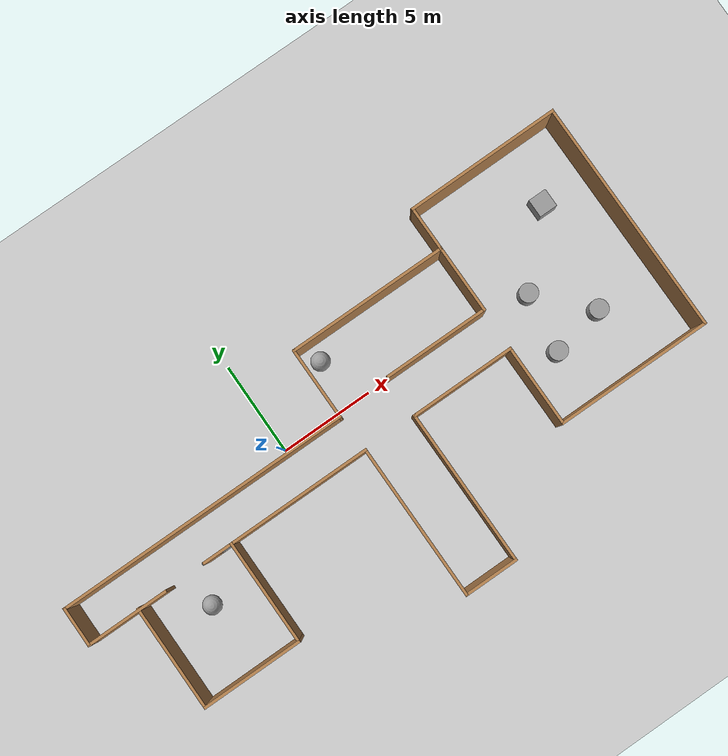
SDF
<sdf version="1.7">
 <world name="default">
  <model name="ground_plane">
   <static>1</static>
   <link name="link">
    <collision name="collision">
     <geometry><plane><normal>0 0 1</normal><size>100 100</size></plane></geometry>
     <surface><friction><ode><mu>100</mu><mu2>50</mu2></ode></friction></surface>
    </collision>
    <visual name="visual">
     <cast_shadows>0</cast_shadows>
     <geometry><plane><normal>0 0 1</normal><size>100 100</size></plane></geometry>
     <material>
      <script><uri>file://media/materials/scripts/gazebo.material</uri><name>Gazebo/Grey</name></script>
     </material>
    </visual>
   </link>
  </model>
  <gravity>0 0 -9.8</gravity>
  <magnetic_field>6e-06 2.3e-05 -4.2e-05</magnetic_field>
  <atmosphere type="adiabatic"/>
  <physics type="ode">
   <max_step_size>0.001</max_step_size>
   <real_time_factor>1</real_time_factor>
   <real_time_update_rate>1000</real_time_update_rate>
  </physics>
  <scene><ambient>0.4 0.4 0.4 1</ambient><background>0.7 0.7 0.7 1</background><shadows>1</shadows></scene>
  <spherical_coordinates>
   <surface_model>EARTH_WGS84</surface_model>
   <latitude_deg>0</latitude_deg>
   <longitude_deg>0</longitude_deg>
   <elevation>0</elevation>
   <heading_deg>0</heading_deg>
  </spherical_coordinates>
  <model name="test">
   <pose>3.67694 -2.37441 0 0 -0 0</pose>
   <link name="Wall_10">
    <collision name="Wall_10_Collision">
     <geometry><box><size>5.5 0.15 2.5</size></box></geometry>
     <pose>0 0 1.25 0 -0 0</pose>
    </collision>
    <visual name="Wall_10_Visual">
     <pose>0 0 1.25 0 -0 0</pose>
     <geometry><box><size>5.5 0.15 2.5</size></box></geometry>
     <material>
      <script><uri>file://media/materials/scripts/gazebo.material</uri><name>Gazebo/Wood</name></script>
      <ambient>1 1 1 1</ambient>
     </material>
     <meta><layer>0</layer></meta>
    </visual>
    <pose>-10.8519 -5.5502 0 0 -0 0</pose>
   </link>
   <link name="Wall_11">
    <collision name="Wall_11_Collision">
     <geometry><box><size>5.75 0.15 2.5</size></box></geometry>
     <pose>0 0 1.25 0 -0 0</pose>
    </collision>
    <visual name="Wall_11_Visual">
     <pose>0 0 1.25 0 -0 0</pose>
     <geometry><box><size>5.75 0.15 2.5</size></box></geometry>
     <material>
      <script><uri>file://media/materials/scripts/gazebo.material</uri><name>Gazebo/Wood</name></script>
      <ambient>1 1 1 1</ambient>
     </material>
     <meta><layer>0</layer></meta>
    </visual>
    <pose>-8.17693 -2.7502 0 0 -0 1.5708</pose>
   </link>
   <link name="Wall_12">
    <collision name="Wall_12_Collision">
     <geometry><box><size>1.75 0.15 2.5</size></box></geometry>
     <pose>0 0 1.25 0 -0 0</pose>
    </collision>
    <visual name="Wall_12_Visual">
     <pose>0 0 1.25 0 -0 0</pose>
     <geometry><box><size>1.75 0.15 2.5</size></box></geometry>
     <material>
      <script><uri>file://media/materials/scripts/gazebo.material</uri><name>Gazebo/Grey</name></script>
      <ambient>1 1 1 1</ambient>
     </material>
     <meta><layer>0</layer></meta>
    </visual>
    <pose>-8.97693 0.049799 0 0 -0 3.14159</pose>
   </link>
   <link name="Wall_13">
    <collision name="Wall_13_Collision">
     <geometry><box><size>9.5 0.15 2.5</size></box></geometry>
     <pose>0 0 1.25 0 -0 0</pose>
    </collision>
    <visual name="Wall_13_Visual">
     <pose>0 0 1.25 0 -0 0</pose>
     <geometry><box><size>9.5 0.15 2.5</size></box></geometry>
     <material>
      <script><uri>file://media/materials/scripts/gazebo.material</uri><name>Gazebo/Wood</name></script>
      <ambient>1 1 1 1</ambient>
     </material>
     <meta><layer>0</layer></meta>
    </visual>
    <pose>-5.10193 0.049799 0 0 -0 0</pose>
   </link>
   <link name="Wall_14">
    <collision name="Wall_14_Collision">
     <geometry><box><size>8.5 0.15 2.5</size></box></geometry>
     <pose>0 0 1.25 0 -0 0</pose>
    </collision>
    <visual name="Wall_14_Visual">
     <pose>0 0 1.25 0 -0 0</pose>
     <geometry><box><size>8.5 0.15 2.5</size></box></geometry>
     <material>
      <script><uri>file://media/materials/scripts/gazebo.material</uri><name>Gazebo/Wood</name></script>
      <ambient>1 1 1 1</ambient>
     </material>
     <meta><layer>0</layer></meta>
    </visual>
    <pose>-0.426931 -4.1252 0 0 -0 -1.5708</pose>
   </link>
   <link name="Wall_15">
    <collision name="Wall_15_Collision">
     <geometry><box><size>3 0.15 2.5</size></box></geometry>
     <pose>0 0 1.25 0 -0 0</pose>
    </collision>
    <visual name="Wall_15_Visual">
     <pose>0 0 1.25 0 -0 0</pose>
     <geometry><box><size>3 0.15 2.5</size></box></geometry>
     <material>
      <script><uri>file://media/materials/scripts/gazebo.material</uri><name>Gazebo/Wood</name></script>
      <ambient>1 1 1 1</ambient>
     </material>
     <meta><layer>0</layer></meta>
    </visual>
    <pose>0.998069 -8.3002 0 0 -0 0</pose>
   </link>
   <link name="Wall_16">
    <collision name="Wall_16_Collision">
     <geometry><box><size>8.5 0.15 2.5</size></box></geometry>
     <pose>0 0 1.25 0 -0 0</pose>
    </collision>
    <visual name="Wall_16_Visual">
     <pose>0 0 1.25 0 -0 0</pose>
     <geometry><box><size>8.5 0.15 2.5</size></box></geometry>
     <material>
      <script><uri>file://media/materials/scripts/gazebo.material</uri><name>Gazebo/Wood</name></script>
      <ambient>1 1 1 1</ambient>
     </material>
     <meta><layer>0</layer></meta>
    </visual>
    <pose>2.42307 -4.1252 0 0 -0 1.5708</pose>
   </link>
   <link name="Wall_17">
    <collision name="Wall_17_Collision">
     <geometry><box><size>5.75 0.15 2.5</size></box></geometry>
     <pose>0 0 1.25 0 -0 0</pose>
    </collision>
    <visual name="Wall_17_Visual">
     <pose>0 0 1.25 0 -0 0</pose>
     <geometry><box><size>5.75 0.15 2.5</size></box></geometry>
     <material>
      <script><uri>file://media/materials/scripts/gazebo.material</uri><name>Gazebo/Wood</name></script>
      <ambient>1 1 1 1</ambient>
     </material>
     <meta><layer>0</layer></meta>
    </visual>
    <pose>5.22307 0.049799 0 0 -0 0</pose>
   </link>
   <link name="Wall_19">
    <collision name="Wall_19_Collision">
     <geometry><box><size>16 0.15 2.5</size></box></geometry>
     <pose>0 0 1.25 0 -0 0</pose>
    </collision>
    <visual name="Wall_19_Visual">
     <pose>0 0 1.25 0 -0 0</pose>
     <geometry><box><size>16 0.15 2.5</size></box></geometry>
     <material>
      <script><uri>file://media/materials/scripts/gazebo.material</uri><name>Gazebo/Wood</name></script>
      <ambient>1 1 1 1</ambient>
     </material>
     <meta><layer>0</layer></meta>
    </visual>
    <pose>-8.4394 2.05526 0 0 -0 0</pose>
   </link>
   <link name="Wall_21">
    <collision name="Wall_21_Collision">
     <geometry><box><size>2.20868 0.15 2.5</size></box></geometry>
     <pose>0 0 1.25 0 -0 0</pose>
    </collision>
    <visual name="Wall_21_Visual">
     <pose>0 0 1.25 0 -0 0</pose>
     <geometry><box><size>2.20868 0.15 2.5</size></box></geometry>
     <material>
      <script><uri>file://media/materials/scripts/gazebo.material</uri><name>Gazebo/Wood</name></script>
      <ambient>1 1 1 1</ambient>
     </material>
     <meta><layer>0</layer></meta>
    </visual>
    <pose>-16.3688 1.02593 0 0 -0 1.56654</pose>
   </link>
   <link name="Wall_23">
    <collision name="Wall_23_Collision">
     <geometry><box><size>4 0.15 2.5</size></box></geometry>
     <pose>0 0 1.25 0 -0 0</pose>
    </collision>
    <visual name="Wall_23_Visual">
     <pose>0 0 1.25 0 -0 0</pose>
     <geometry><box><size>4 0.15 2.5</size></box></geometry>
     <material>
      <script><uri>file://media/materials/scripts/gazebo.material</uri><name>Gazebo/Wood</name></script>
      <ambient>1 1 1 1</ambient>
     </material>
     <meta><layer>0</layer></meta>
    </visual>
    <pose>-0.514398 3.98026 0 0 -0 1.5708</pose>
   </link>
   <link name="Wall_24">
    <collision name="Wall_24_Collision">
     <geometry><box><size>8.75 0.15 2.5</size></box></geometry>
     <pose>0 0 1.25 0 -0 0</pose>
    </collision>
    <visual name="Wall_24_Visual">
     <pose>0 0 1.25 0 -0 0</pose>
     <geometry><box><size>8.75 0.15 2.5</size></box></geometry>
     <material>
      <script><uri>file://media/materials/scripts/gazebo.material</uri><name>Gazebo/Wood</name></script>
      <ambient>1 1 1 1</ambient>
     </material>
     <meta><layer>0</layer></meta>
    </visual>
    <pose>3.7856 5.90526 0 0 -0 0</pose>
   </link>
   <link name="Wall_25">
    <collision name="Wall_25_Collision">
     <geometry><box><size>3.75 0.15 2.5</size></box></geometry>
     <pose>0 0 1.25 0 -0 0</pose>
    </collision>
    <visual name="Wall_25_Visual">
     <pose>0 0 1.25 0 -0 0</pose>
     <geometry><box><size>3.75 0.15 2.5</size></box></geometry>
     <material>
      <script><uri>file://media/materials/scripts/gazebo.material</uri><name>Gazebo/Wood</name></script>
      <ambient>1 1 1 1</ambient>
     </material>
     <meta><layer>0</layer></meta>
    </visual>
    <pose>8.0856 4.10526 0 0 -0 -1.5708</pose>
   </link>
   <link name="Wall_26">
    <collision name="Wall_26_Collision">
     <geometry><box><size>5.75 0.15 2.5</size></box></geometry>
     <pose>0 0 1.25 0 -0 0</pose>
    </collision>
    <visual name="Wall_26_Visual">
     <pose>0 0 1.25 0 -0 0</pose>
     <geometry><box><size>5.75 0.15 2.5</size></box></geometry>
     <material>
      <script><uri>file://media/materials/scripts/gazebo.material</uri><name>Gazebo/Wood</name></script>
      <ambient>1 1 1 1</ambient>
     </material>
     <meta><layer>0</layer></meta>
    </visual>
    <pose>5.2856 2.30526 0 0 -0 3.14159</pose>
   </link>
   <link name="Wall_28">
    <collision name="Wall_28_Collision">
     <geometry><box><size>4.5 0.15 2.5</size></box></geometry>
     <pose>0 0 1.25 0 -0 0</pose>
    </collision>
    <visual name="Wall_28_Visual">
     <pose>0 0 1.25 0 -0 0</pose>
     <geometry><box><size>4.5 0.15 2.5</size></box></geometry>
     <material>
      <script><uri>file://media/materials/scripts/gazebo.material</uri><name>Gazebo/Wood</name></script>
      <ambient>1 1 1 1</ambient>
     </material>
     <meta><layer>0</layer></meta>
    </visual>
    <pose>8.02307 -2.1252 0 0 -0 -1.5708</pose>
   </link>
   <link name="Wall_29">
    <collision name="Wall_29_Collision">
     <geometry><box><size>8.5 0.15 2.5</size></box></geometry>
     <pose>0 0 1.25 0 -0 0</pose>
    </collision>
    <visual name="Wall_29_Visual">
     <pose>0 0 1.25 0 -0 0</pose>
     <geometry><box><size>8.5 0.15 2.5</size></box></geometry>
     <material>
      <script><uri>file://media/materials/scripts/gazebo.material</uri><name>Gazebo/Wood</name></script>
      <ambient>1 1 1 1</ambient>
     </material>
     <meta><layer>0</layer></meta>
    </visual>
    <pose>12.1981 -4.3002 0 0 -0 0</pose>
   </link>
   <link name="Wall_30">
    <collision name="Wall_30_Collision">
     <geometry><box><size>12.75 0.15 2.5</size></box></geometry>
     <pose>0 0 1.25 0 -0 0</pose>
    </collision>
    <visual name="Wall_30_Visual">
     <pose>0 0 1.25 0 -0 0</pose>
     <geometry><box><size>12.75 0.15 2.5</size></box></geometry>
     <material>
      <script><uri>file://media/materials/scripts/gazebo.material</uri><name>Gazebo/Wood</name></script>
      <ambient>1 1 1 1</ambient>
     </material>
     <meta><layer>0</layer></meta>
    </visual>
    <pose>16.3731 1.9998 0 0 -0 1.5708</pose>
   </link>
   <link name="Wall_32">
    <collision name="Wall_32_Collision">
     <geometry><box><size>2.5 0.15 2.5</size></box></geometry>
     <pose>0 0 1.25 0 -0 0</pose>
    </collision>
    <visual name="Wall_32_Visual">
     <pose>0 0 1.25 0 -0 0</pose>
     <geometry><box><size>2.5 0.15 2.5</size></box></geometry>
     <material>
      <script><uri>file://media/materials/scripts/gazebo.material</uri><name>Gazebo/Wood</name></script>
      <ambient>1 1 1 1</ambient>
     </material>
     <meta><layer>0</layer></meta>
    </visual>
    <pose>8.0856 7.08026 0 0 -0 -1.5708</pose>
   </link>
   <link name="Wall_34">
    <collision name="Wall_34_Collision">
     <geometry><box><size>8.43759 0.15 2.5</size></box></geometry>
     <pose>0 0 1.25 0 -0 0</pose>
    </collision>
    <visual name="Wall_34_Visual">
     <pose>0 0 1.25 0 -0 0</pose>
     <geometry><box><size>8.43759 0.15 2.5</size></box></geometry>
     <material>
      <script><uri>file://media/materials/scripts/gazebo.material</uri><name>Gazebo/Wood</name></script>
      <ambient>1 1 1 1</ambient>
     </material>
     <meta><layer>0</layer></meta>
    </visual>
    <pose>12.2293 8.27753 0 0 -0 0.005374</pose>
   </link>
   <link name="Wall_7">
    <collision name="Wall_7_Collision">
     <geometry><box><size>4.5 0.15 2.5</size></box></geometry>
     <pose>0 0 1.25 0 -0 0</pose>
    </collision>
    <visual name="Wall_7_Visual">
     <pose>0 0 1.25 0 -0 0</pose>
     <geometry><box><size>4.5 0.15 2.5</size></box></geometry>
     <material>
      <script><uri>file://media/materials/scripts/gazebo.material</uri><name>Gazebo/Wood</name></script>
      <ambient>1 1 1 1</ambient>
     </material>
     <meta><layer>0</layer></meta>
    </visual>
    <pose>-14.1982 -0.003401 0 0 -0 0</pose>
   </link>
   <link name="Wall_9">
    <collision name="Wall_9_Collision">
     <geometry><box><size>5.75 0.15 2.5</size></box></geometry>
     <pose>0 0 1.25 0 -0 0</pose>
    </collision>
    <visual name="Wall_9_Visual">
     <pose>0 0 1.25 0 -0 0</pose>
     <geometry><box><size>5.75 0.15 2.5</size></box></geometry>
     <material>
      <script><uri>file://media/materials/scripts/gazebo.material</uri><name>Gazebo/Wood</name></script>
      <ambient>1 1 1 1</ambient>
     </material>
     <meta><layer>0</layer></meta>
    </visual>
    <pose>-13.5269 -2.7502 0 0 -0 -1.5708</pose>
   </link>
   <static>1</static>
  </model>
  <model name="test_0">
   <link name="link_0">
    <inertial>
     <mass>1</mass>
     <inertia><ixx>0.145833</ixx><ixy>0</ixy><ixz>0</ixz><iyy>0.145833</iyy><iyz>0</iyz><izz>0.125</izz></inertia>
    </inertial>
    <pose>4.44532 0.504832 0 0 -0 0</pose>
    <visual name="visual">
     <geometry><cylinder><radius>0.5</radius><length>1</length></cylinder></geometry>
     <material>
      <lighting>1</lighting>
      <script><uri>file://media/materials/scripts/gazebo.material</uri><name>Gazebo/Grey</name></script>
      <shader type="pixel"/>
     </material>
    </visual>
    <collision name="collision">
     <geometry><cylinder><radius>0.5</radius><length>1</length></cylinder></geometry>
     <surface>
      <friction>
       <ode><mu>1</mu><mu2>1</mu2><fdir1>0 0 0</fdir1><slip1>0</slip1><slip2>0</slip2></ode>
       <torsional>
        <coefficient>1</coefficient>
        <patch_radius>0</patch_radius>
        <surface_radius>0</surface_radius>
        <use_patch_radius>1</use_patch_radius>
        <ode><slip>0</slip></ode>
       </torsional>
      </friction>
      <bounce><restitution_coefficient>0</restitution_coefficient><threshold>1e+06</threshold></bounce>
      <contact>
       <collide_without_contact>0</collide_without_contact>
       <collide_without_contact_bitmask>1</collide_without_contact_bitmask>
       <collide_bitmask>1</collide_bitmask>
       <ode>
        <soft_cfm>0</soft_cfm>
        <soft_erp>0.2</soft_erp>
        <kp>1e+13</kp>
        <kd>1</kd>
        <max_vel>0.01</max_vel>
        <min_depth>0</min_depth>
       </ode>
       <bullet>
        <split_impulse>1</split_impulse>
        <split_impulse_penetration_threshold>-0.01</split_impulse_penetration_threshold>
        <soft_cfm>0</soft_cfm>
        <soft_erp>0.2</soft_erp>
        <kp>1e+13</kp>
        <kd>1</kd>
       </bullet>
      </contact>
     </surface>
    </collision>
   </link>
   <link name="link_1">
    <inertial>
     <mass>1</mass>
     <inertia><ixx>0.145833</ixx><ixy>0</ixy><ixz>0</ixz><iyy>0.145833</iyy><iyz>0</iyz><izz>0.125</izz></inertia>
    </inertial>
    <pose>6.82495 -2.12202 0 0 -0 0</pose>
    <visual name="visual">
     <geometry><cylinder><radius>0.5</radius><length>1</length></cylinder></geometry>
     <material>
      <lighting>1</lighting>
      <script><uri>file://media/materials/scripts/gazebo.material</uri><name>Gazebo/Grey</name></script>
      <shader type="pixel"/>
     </material>
    </visual>
    <collision name="collision">
     <geometry><cylinder><radius>0.5</radius><length>1</length></cylinder></geometry>
     <surface>
      <friction>
       <ode><mu>1</mu><mu2>1</mu2><fdir1>0 0 0</fdir1><slip1>0</slip1><slip2>0</slip2></ode>
       <torsional>
        <coefficient>1</coefficient>
        <patch_radius>0</patch_radius>
        <surface_radius>0</surface_radius>
        <use_patch_radius>1</use_patch_radius>
        <ode><slip>0</slip></ode>
       </torsional>
      </friction>
      <bounce><restitution_coefficient>0</restitution_coefficient><threshold>1e+06</threshold></bounce>
      <contact>
       <collide_without_contact>0</collide_without_contact>
       <collide_without_contact_bitmask>1</collide_without_contact_bitmask>
       <collide_bitmask>1</collide_bitmask>
       <ode>
        <soft_cfm>0</soft_cfm>
        <soft_erp>0.2</soft_erp>
        <kp>1e+13</kp>
        <kd>1</kd>
        <max_vel>0.01</max_vel>
        <min_depth>0</min_depth>
       </ode>
       <bullet>
        <split_impulse>1</split_impulse>
        <split_impulse_penetration_threshold>-0.01</split_impulse_penetration_threshold>
        <soft_cfm>0</soft_cfm>
        <soft_erp>0.2</soft_erp>
        <kp>1e+13</kp>
        <kd>1</kd>
       </bullet>
      </contact>
     </surface>
    </collision>
   </link>
   <link name="link_2">
    <inertial>
     <mass>1</mass>
     <inertia><ixx>0.145833</ixx><ixy>0</ixy><ixz>0</ixz><iyy>0.145833</iyy><iyz>0</iyz><izz>0.125</izz></inertia>
    </inertial>
    <pose>3.99212 -2.65955 0 0 -0 0</pose>
    <visual name="visual">
     <geometry><cylinder><radius>0.5</radius><length>1</length></cylinder></geometry>
     <material>
      <lighting>1</lighting>
      <script><uri>file://media/materials/scripts/gazebo.material</uri><name>Gazebo/Grey</name></script>
      <shader type="pixel"/>
     </material>
    </visual>
    <collision name="collision">
     <geometry><cylinder><radius>0.5</radius><length>1</length></cylinder></geometry>
     <surface>
      <friction>
       <ode><mu>1</mu><mu2>1</mu2><fdir1>0 0 0</fdir1><slip1>0</slip1><slip2>0</slip2></ode>
       <torsional>
        <coefficient>1</coefficient>
        <patch_radius>0</patch_radius>
        <surface_radius>0</surface_radius>
        <use_patch_radius>1</use_patch_radius>
        <ode><slip>0</slip></ode>
       </torsional>
      </friction>
      <bounce><restitution_coefficient>0</restitution_coefficient><threshold>1e+06</threshold></bounce>
      <contact>
       <collide_without_contact>0</collide_without_contact>
       <collide_without_contact_bitmask>1</collide_without_contact_bitmask>
       <collide_bitmask>1</collide_bitmask>
       <ode>
        <soft_cfm>0</soft_cfm>
        <soft_erp>0.2</soft_erp>
        <kp>1e+13</kp>
        <kd>1</kd>
        <max_vel>0.01</max_vel>
        <min_depth>0</min_depth>
       </ode>
       <bullet>
        <split_impulse>1</split_impulse>
        <split_impulse_penetration_threshold>-0.01</split_impulse_penetration_threshold>
        <soft_cfm>0</soft_cfm>
        <soft_erp>0.2</soft_erp>
        <kp>1e+13</kp>
        <kd>1</kd>
       </bullet>
      </contact>
     </surface>
    </collision>
   </link>
   <link name="link_4">
    <inertial>
     <mass>1</mass>
     <inertia>
      <ixx>0.166667</ixx>
      <ixy>0</ixy>
      <ixz>0</ixz>
      <iyy>0.166667</iyy>
      <iyz>0</iyz>
      <izz>0.166667</izz>
     </inertia>
    </inertial>
    <pose>7.59812 3.7443 0 0 -0 0</pose>
    <visual name="visual">
     <geometry><box><size>1 1 1</size></box></geometry>
     <material>
      <lighting>1</lighting>
      <script><uri>file://media/materials/scripts/gazebo.material</uri><name>Gazebo/Grey</name></script>
      <shader type="pixel"/>
     </material>
    </visual>
    <collision name="collision">
     <geometry><box><size>1 1 1</size></box></geometry>
     <surface>
      <friction>
       <ode><mu>1</mu><mu2>1</mu2><fdir1>0 0 0</fdir1><slip1>0</slip1><slip2>0</slip2></ode>
       <torsional>
        <coefficient>1</coefficient>
        <patch_radius>0</patch_radius>
        <surface_radius>0</surface_radius>
        <use_patch_radius>1</use_patch_radius>
        <ode><slip>0</slip></ode>
       </torsional>
      </friction>
      <bounce><restitution_coefficient>0</restitution_coefficient><threshold>1e+06</threshold></bounce>
      <contact>
       <collide_without_contact>0</collide_without_contact>
       <collide_without_contact_bitmask>1</collide_without_contact_bitmask>
       <collide_bitmask>1</collide_bitmask>
       <ode>
        <soft_cfm>0</soft_cfm>
        <soft_erp>0.2</soft_erp>
        <kp>1e+13</kp>
        <kd>1</kd>
        <max_vel>0.01</max_vel>
        <min_depth>0</min_depth>
       </ode>
       <bullet>
        <split_impulse>1</split_impulse>
        <split_impulse_penetration_threshold>-0.01</split_impulse_penetration_threshold>
        <soft_cfm>0</soft_cfm>
        <soft_erp>0.2</soft_erp>
        <kp>1e+13</kp>
        <kd>1</kd>
       </bullet>
      </contact>
     </surface>
    </collision>
   </link>
   <link name="link_5">
    <inertial>
     <mass>1</mass>
     <inertia><ixx>0.1</ixx><ixy>0</ixy><ixz>0</ixz><iyy>0.1</iyy><iyz>0</iyz><izz>0.1</izz></inertia>
    </inertial>
    <pose>-5.86615 3.64872 0 0 -0 0</pose>
    <visual name="visual">
     <geometry><sphere><radius>0.5</radius></sphere></geometry>
     <material>
      <lighting>1</lighting>
      <script><uri>file://media/materials/scripts/gazebo.material</uri><name>Gazebo/Grey</name></script>
      <shader type="pixel"/>
     </material>
    </visual>
    <collision name="collision">
     <geometry><sphere><radius>0.5</radius></sphere></geometry>
     <surface>
      <friction>
       <ode><mu>1</mu><mu2>1</mu2><fdir1>0 0 0</fdir1><slip1>0</slip1><slip2>0</slip2></ode>
       <torsional>
        <coefficient>1</coefficient>
        <patch_radius>0</patch_radius>
        <surface_radius>0</surface_radius>
        <use_patch_radius>1</use_patch_radius>
        <ode><slip>0</slip></ode>
       </torsional>
      </friction>
      <bounce><restitution_coefficient>0</restitution_coefficient><threshold>1e+06</threshold></bounce>
      <contact>
       <collide_without_contact>0</collide_without_contact>
       <collide_without_contact_bitmask>1</collide_without_contact_bitmask>
       <collide_bitmask>1</collide_bitmask>
       <ode>
        <soft_cfm>0</soft_cfm>
        <soft_erp>0.2</soft_erp>
        <kp>1e+13</kp>
        <kd>1</kd>
        <max_vel>0.01</max_vel>
        <min_depth>0</min_depth>
       </ode>
       <bullet>
        <split_impulse>1</split_impulse>
        <split_impulse_penetration_threshold>-0.01</split_impulse_penetration_threshold>
        <soft_cfm>0</soft_cfm>
        <soft_erp>0.2</soft_erp>
        <kp>1e+13</kp>
        <kd>1</kd>
       </bullet>
      </contact>
     </surface>
    </collision>
   </link>
   <link name="link_6">
    <inertial>
     <mass>1</mass>
     <inertia><ixx>0.1</ixx><ixy>0</ixy><ixz>0</ixz><iyy>0.1</iyy><iyz>0</iyz><izz>0.1</izz></inertia>
    </inertial>
    <pose>-16.9945 -3.11625 0 0 -0 0</pose>
    <visual name="visual">
     <geometry><sphere><radius>0.5</radius></sphere></geometry>
     <material>
      <lighting>1</lighting>
      <script><uri>file://media/materials/scripts/gazebo.material</uri><name>Gazebo/Grey</name></script>
      <shader type="pixel"/>
     </material>
    </visual>
    <collision name="collision">
     <geometry><sphere><radius>0.5</radius></sphere></geometry>
     <surface>
      <friction>
       <ode><mu>1</mu><mu2>1</mu2><fdir1>0 0 0</fdir1><slip1>0</slip1><slip2>0</slip2></ode>
       <torsional>
        <coefficient>1</coefficient>
        <patch_radius>0</patch_radius>
        <surface_radius>0</surface_radius>
        <use_patch_radius>1</use_patch_radius>
        <ode><slip>0</slip></ode>
       </torsional>
      </friction>
      <bounce><restitution_coefficient>0</restitution_coefficient><threshold>1e+06</threshold></bounce>
      <contact>
       <collide_without_contact>0</collide_without_contact>
       <collide_without_contact_bitmask>1</collide_without_contact_bitmask>
       <collide_bitmask>1</collide_bitmask>
       <ode>
        <soft_cfm>0</soft_cfm>
        <soft_erp>0.2</soft_erp>
        <kp>1e+13</kp>
        <kd>1</kd>
        <max_vel>0.01</max_vel>
        <min_depth>0</min_depth>
       </ode>
       <bullet>
        <split_impulse>1</split_impulse>
        <split_impulse_penetration_threshold>-0.01</split_impulse_penetration_threshold>
        <soft_cfm>0</soft_cfm>
        <soft_erp>0.2</soft_erp>
        <kp>1e+13</kp>
        <kd>1</kd>
       </bullet>
      </contact>
     </surface>
    </collision>
   </link>
   <static>0</static>
   <pose>9.80393 -1.05329 0.5 0 -0 0</pose>
  </model>
  <light name="user_directional_light_0" type="directional">
   <pose>4.8024 -1.04106 1 0 -0 0</pose>
   <diffuse>0.5 0.5 0.5 1</diffuse>
   <specular>0.1 0.1 0.1 1</specular>
   <direction>0.1 0.1 -0.9</direction>
   <attenuation>
    <range>20</range>
    <constant>0.5</constant>
    <linear>0.01</linear>
    <quadratic>0.001</quadratic>
   </attenuation>
  </light>
 </world>
</sdf>
